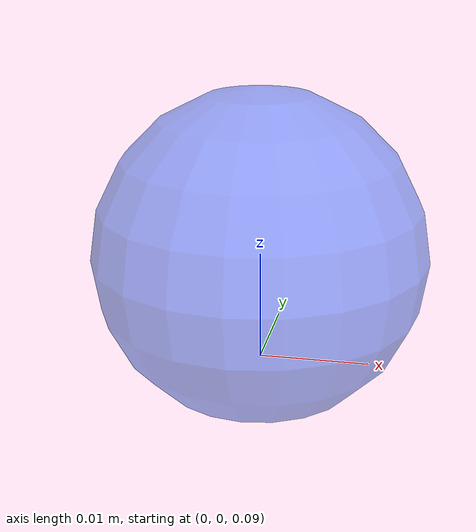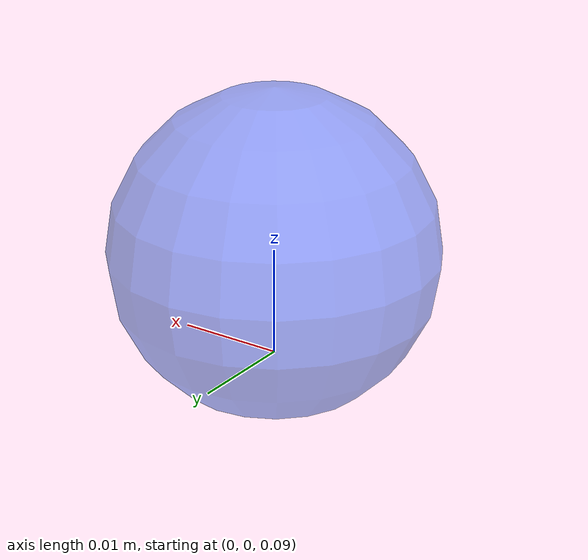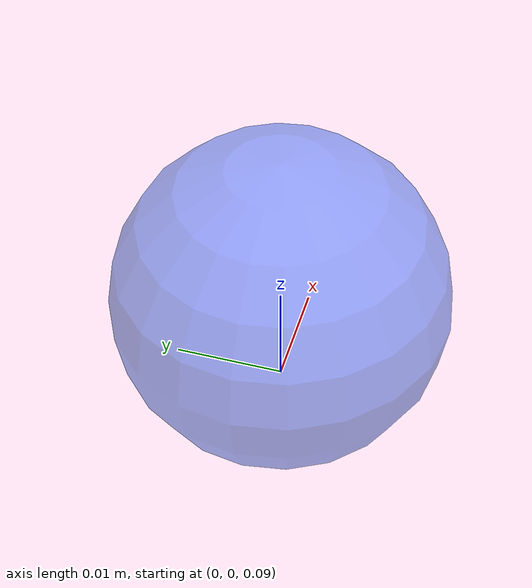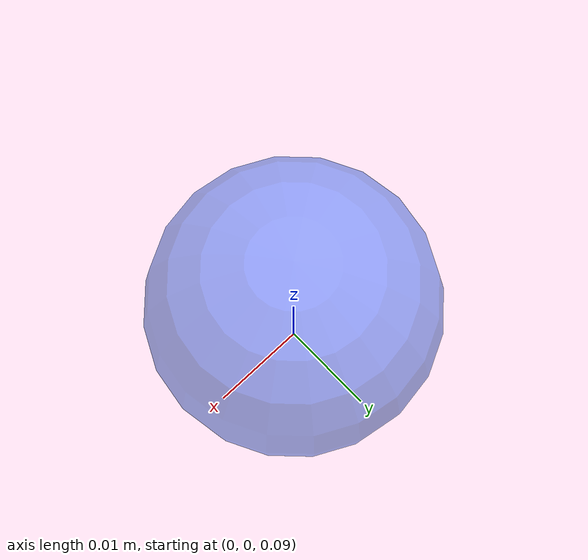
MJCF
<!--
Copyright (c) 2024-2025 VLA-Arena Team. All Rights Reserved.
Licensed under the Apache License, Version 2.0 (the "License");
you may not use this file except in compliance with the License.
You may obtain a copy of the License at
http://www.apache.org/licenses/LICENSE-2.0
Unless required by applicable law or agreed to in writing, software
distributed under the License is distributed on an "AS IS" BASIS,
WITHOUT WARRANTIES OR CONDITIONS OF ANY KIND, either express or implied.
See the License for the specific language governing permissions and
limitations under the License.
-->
<mujoco>
    <compiler angle="radian" inertiafromgeom="auto"/>

    <asset>
        <material name="green" rgba="0 1 0 1" />
        <texture name="grid" type="2d" builtin="checker" width="512" height="512"
                 rgb1=".1 .2 .3" rgb2=".2 .3 .4" />
        <material name="grid" texture="grid" texrepeat="1 1" texuniform="true" reflectance=".2" />
        <material name="water_drop" rgba="0.2 0.4 1 0.5" />
    </asset>

    <worldbody>
        <light diffuse="0.3 0.3 0.3" pos="1 0 3" dir="-1 0 -3" />
        <geom type="plane" size="10 10 0.1" material="grid" group="1"/>

        <body pos="0 0 0.1">
            <body name="object">
                <!-- ✅ 放大后质量和惯性 -->
                <inertial pos="0 0 0" mass="0.004" diaginertia="0.00004 0.00004 0.00004"/>

                <!-- ✅ 半径放大为 0.01m -->
                <geom type="sphere" size="0.015" material="water_drop" group="1"
                      friction="0.001 0.0001 0.0001"/>
            </body>

            <!-- ✅ site 也同步放大 -->
            <site rgba="0 0 0 0" size="0.0025" pos="0 0 -0.01" name="bottom_site" />
            <site rgba="0 0 0 0" size="0.0025" pos="0 0 0.01"  name="top_site" />
            <site rgba="0 0 0 0" size="0.0025" pos="0.01 0 0"  name="horizontal_radius_site" />
        </body>
    </worldbody>
</mujoco>
